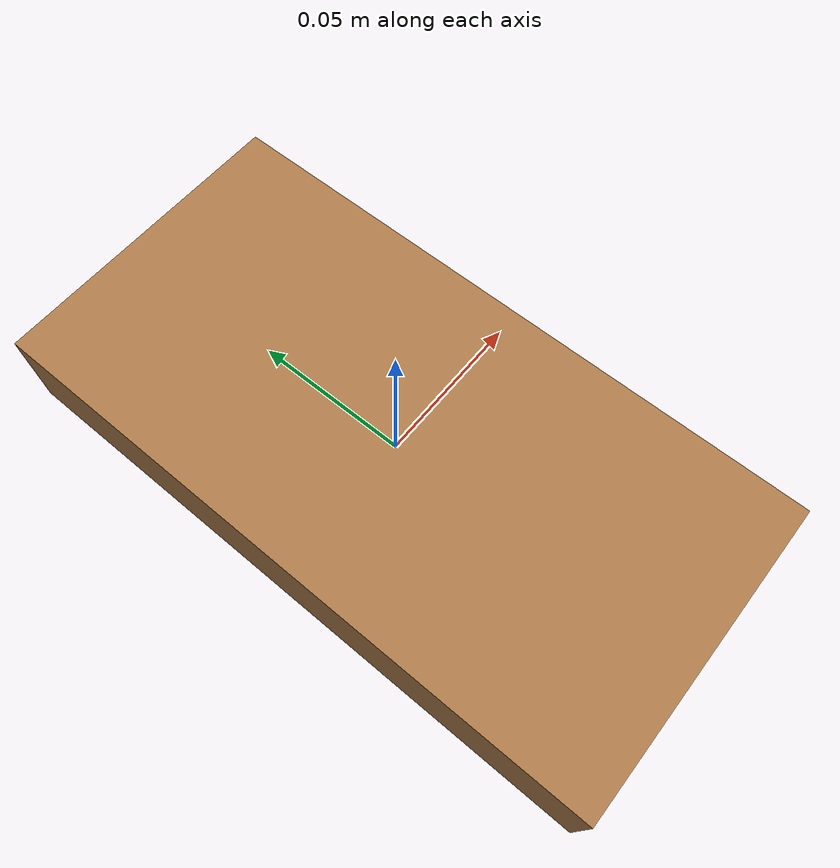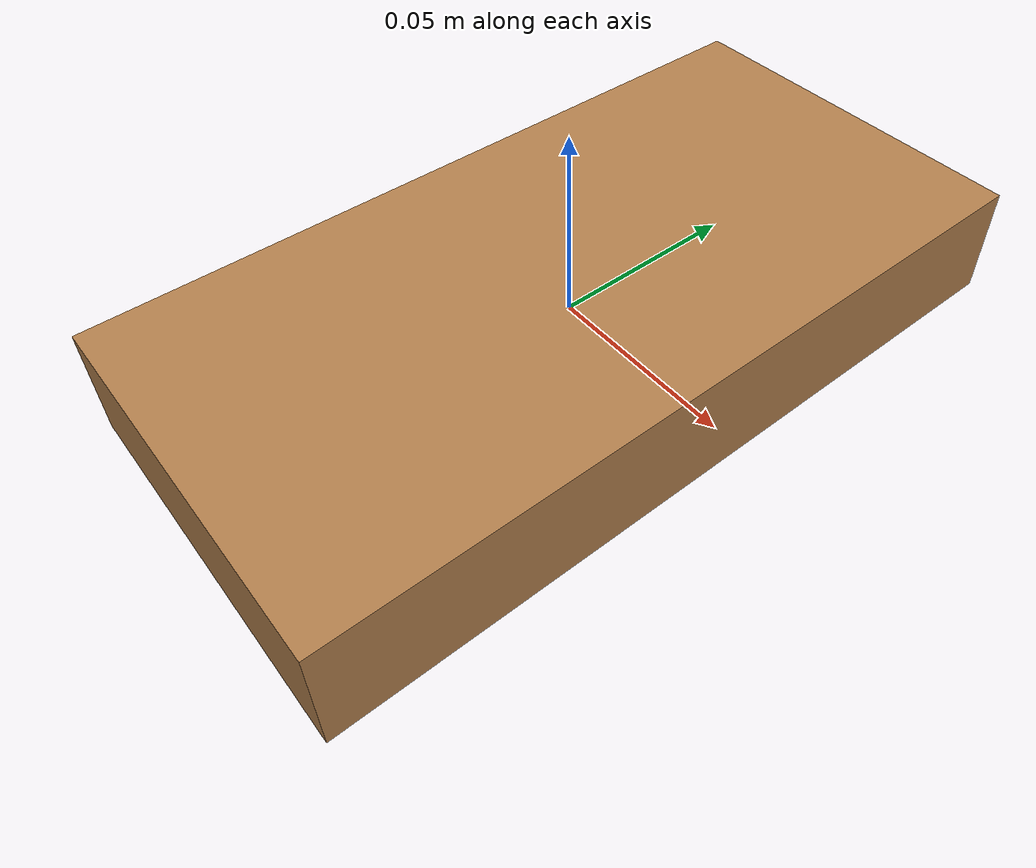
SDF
<?xml version="1.0" ?>
<sdf version="1.6">
  <model name="brown_table">
    <static>true</static>
    <link name="link">
      <collision name="collision">
        <geometry>
          <box>
            <size>0.10 0.20 0.03</size>
          </box>
        </geometry>
      </collision>
      <visual name="visual">
        <geometry>
          <box>
            <size>0.10 0.20 0.03</size>
          </box>
        </geometry>
        <material>
          <ambient>0.7 0.5 0.3 1</ambient>
          <diffuse>0.7 0.5 0.3 1</diffuse>
          <specular>0.1 0.1 0.1 1</specular>
        </material>
      </visual>
    </link>
  </model>
</sdf>
